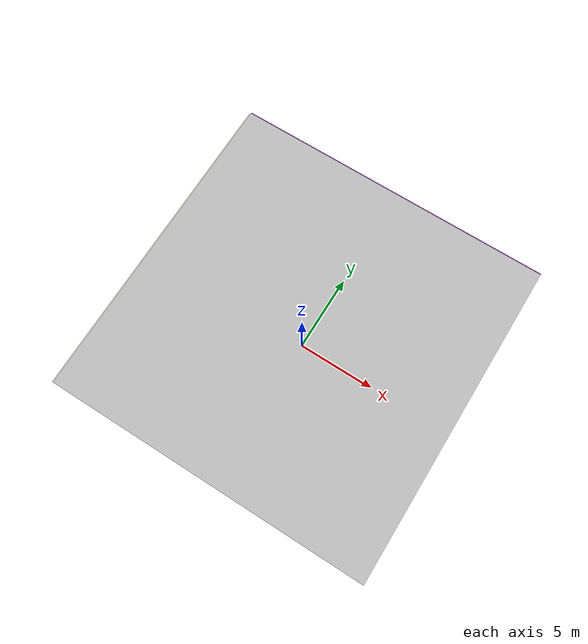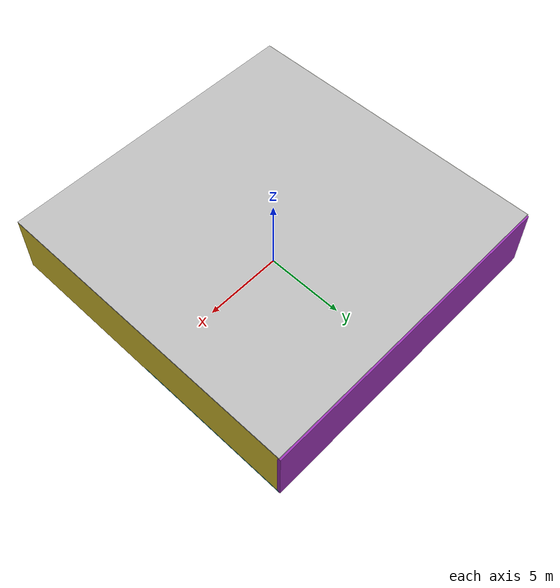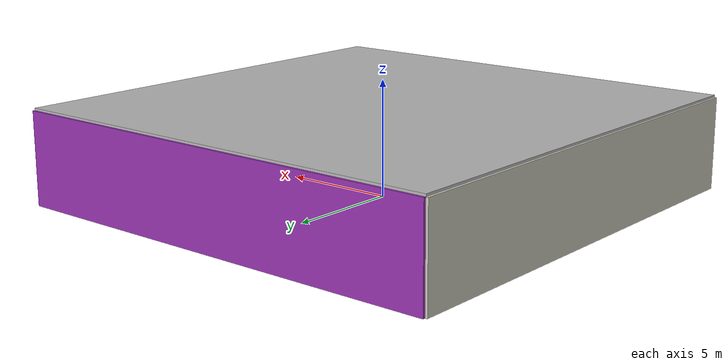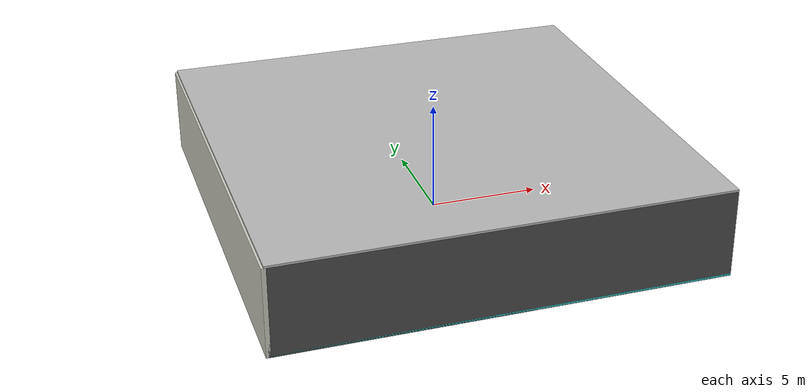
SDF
<sdf version="1.4">
 <world name="default">
  <physics type="ode">
   <max_step_size>0.001</max_step_size>
   <real_time_factor>1</real_time_factor>
   <real_time_update_rate>1000</real_time_update_rate>
   <gravity>0 0 -9.8</gravity>
  </physics>
  <scene><ambient>0.4 0.4 0.4 1</ambient><background>0.7 0.7 0.7 1</background><shadows>1</shadows></scene>
  <model name="Surrounding">
   <static>1</static>
   <link name="Ceiling">
    <collision name="Ceiling_Collision"><geometry><box><size>20 20 0.1</size></box></geometry></collision>
    <visual name="Ceiling_Visual">
     <geometry><box><size>20 20 0.1</size></box></geometry>
     <material>
      <script><uri>file://media/materials/scripts/gazebo.material</uri><name>Gazebo/LightOff</name></script>
     </material>
    </visual>
    <pose>0 0 4.05 0 0 0</pose>
   </link>
   <link name="Wall_South">
    <collision name="Wall_South_Collision">
     <geometry><box><size>20 0 4</size></box></geometry>
     <pose>0 0 2 0 -0 0</pose>
    </collision>
    <visual name="Wall_South_Visual">
     <pose>0 0 2 0 -0 0</pose>
     <geometry><box><size>20 0 4</size></box></geometry>
     <material>
      <script><uri>file://media/materials/scripts/gazebo.material</uri><name>Gazebo/Road</name></script>
     </material>
    </visual>
    <velocity_decay><linear>0</linear><angular>0</angular></velocity_decay>
    <pose>0 -10 0 0 -0 0</pose>
   </link>
   <link name="Wall_East">
    <collision name="Wall_21_Collision">
     <geometry><box><size>20 0 4</size></box></geometry>
     <pose>0 0 2 0 -0 0</pose>
    </collision>
    <visual name="Wall_21_Visual">
     <pose>0 0 2 0 -0 0</pose>
     <geometry><box><size>20 0 4</size></box></geometry>
     <material>
      <script><uri>file://media/materials/scripts/gazebo.material</uri><name>Gazebo/ZincYellow</name></script>
     </material>
    </visual>
    <velocity_decay><linear>0</linear><angular>0</angular></velocity_decay>
    <pose>10 0 0 0 -0 1.5708</pose>
   </link>
   <link name="Wall_North">
    <collision name="Wall_22_Collision">
     <geometry><box><size>20 0.2 4</size></box></geometry>
     <pose>0 0 2 0 -0 0</pose>
    </collision>
    <visual name="Wall_22_Visual">
     <pose>0 0 2 0 -0 0</pose>
     <geometry><box><size>20 0.2 4</size></box></geometry>
     <material>
      <script><uri>file://media/materials/scripts/gazebo.material</uri><name>Gazebo/Purple</name></script>
     </material>
    </visual>
    <velocity_decay><linear>0</linear><angular>0</angular></velocity_decay>
    <pose>0 10 0 0 -0 0</pose>
   </link>
   <link name="Wall_West">
    <collision name="Wall_23_Collision">
     <geometry><box><size>20 0.2 4</size></box></geometry>
     <pose>0 0 2 0 -0 0</pose>
    </collision>
    <visual name="Wall_23_Visual">
     <pose>0 0 2 0 -0 0</pose>
     <geometry><box><size>20 0.2 4</size></box></geometry>
     <material>
      <script><uri>file://media/materials/scripts/gazebo.material</uri><name>Gazebo/PaintedWall</name></script>
     </material>
    </visual>
    <velocity_decay><linear>0</linear><angular>0</angular></velocity_decay>
    <pose>-10 0 0 0 0 -1.5708</pose>
   </link>
   <link name="Ground_link">
    <collision name="collision">
     <pose>0 0 .05 0 -0 0</pose>
     <geometry><box><size>20 20 0.1</size></box></geometry>
    </collision>
    <visual name="visual">
     <pose>0 0 .05 0 -0 0</pose>
     <geometry><box><size>20 20 0.1</size></box></geometry>
     <material>
      <script><uri>file://media/materials/scripts/gazebo.material</uri><name>Gazebo/Turquoise</name></script>
     </material>
    </visual>
   </link>
   <static>1</static>
  </model>
  <spherical_coordinates>
   <surface_model>EARTH_WGS84</surface_model>
   <latitude_deg>0</latitude_deg>
   <longitude_deg>0</longitude_deg>
   <elevation>0</elevation>
   <heading_deg>0</heading_deg>
  </spherical_coordinates>
  <light name="lightball_0" type="diffuse">
   <diffuse>0.8 0.8 0.8 1</diffuse>
   <specular>0.2 0.2 0.2 1</specular>
   <attenuation>
    <range>100</range>
    <constant>0.7</constant>
    <linear>0.01</linear>
    <quadratic>0.001</quadratic>
   </attenuation>
   <direction>-0.5 0.1 -0.9</direction>
   <pose>-4.10582915126 6.70011215497 1.17747114304 0 0 0</pose>
  </light>
  <light name="lightball_1" type="diffuse">
   <diffuse>0.8 0.8 0.8 1</diffuse>
   <specular>0.2 0.2 0.2 1</specular>
   <attenuation>
    <range>100</range>
    <constant>0.7</constant>
    <linear>0.01</linear>
    <quadratic>0.001</quadratic>
   </attenuation>
   <direction>-0.5 0.1 -0.9</direction>
   <pose>-6.44131933211 5.34100781052 3.3616765255 0 0 0</pose>
  </light>
  <light name="lightball_2" type="diffuse">
   <diffuse>0.8 0.8 0.8 1</diffuse>
   <specular>0.2 0.2 0.2 1</specular>
   <attenuation>
    <range>100</range>
    <constant>0.7</constant>
    <linear>0.01</linear>
    <quadratic>0.001</quadratic>
   </attenuation>
   <direction>-0.5 0.1 -0.9</direction>
   <pose>1.96430563532 8.00108510533 3.539078117 0 0 0</pose>
  </light>
  <light name="lightball_3" type="diffuse">
   <diffuse>0.8 0.8 0.8 1</diffuse>
   <specular>0.2 0.2 0.2 1</specular>
   <attenuation>
    <range>100</range>
    <constant>0.7</constant>
    <linear>0.01</linear>
    <quadratic>0.001</quadratic>
   </attenuation>
   <direction>-0.5 0.1 -0.9</direction>
   <pose>7.26277574204 0.0601377573276 3.48396752243 0 0 0</pose>
  </light>
  <light name="lightball_4" type="diffuse">
   <diffuse>0.8 0.8 0.8 1</diffuse>
   <specular>0.2 0.2 0.2 1</specular>
   <attenuation>
    <range>100</range>
    <constant>0.7</constant>
    <linear>0.01</linear>
    <quadratic>0.001</quadratic>
   </attenuation>
   <direction>-0.5 0.1 -0.9</direction>
   <pose>7.15063596049 8.25140648393 1.73144904301 0 0 0</pose>
  </light>
  <light name="lightball_5" type="diffuse">
   <diffuse>0.8 0.8 0.8 1</diffuse>
   <specular>0.2 0.2 0.2 1</specular>
   <attenuation>
    <range>100</range>
    <constant>0.7</constant>
    <linear>0.01</linear>
    <quadratic>0.001</quadratic>
   </attenuation>
   <direction>-0.5 0.1 -0.9</direction>
   <pose>-7.89094120251 -1.35915214847 0.987357651347 0 0 0</pose>
  </light>
  <light name="lightball_6" type="diffuse">
   <diffuse>0.8 0.8 0.8 1</diffuse>
   <specular>0.2 0.2 0.2 1</specular>
   <attenuation>
    <range>100</range>
    <constant>0.7</constant>
    <linear>0.01</linear>
    <quadratic>0.001</quadratic>
   </attenuation>
   <direction>-0.5 0.1 -0.9</direction>
   <pose>-7.73089288639 -1.52283562236 1.25266337037 0 0 0</pose>
  </light>
  <light name="lightball_7" type="diffuse">
   <diffuse>0.8 0.8 0.8 1</diffuse>
   <specular>0.2 0.2 0.2 1</specular>
   <attenuation>
    <range>100</range>
    <constant>0.7</constant>
    <linear>0.01</linear>
    <quadratic>0.001</quadratic>
   </attenuation>
   <direction>-0.5 0.1 -0.9</direction>
   <pose>5.28761678616 -4.53245109199 3.30254680249 0 0 0</pose>
  </light>
  <light name="lightball_8" type="diffuse">
   <diffuse>0.8 0.8 0.8 1</diffuse>
   <specular>0.2 0.2 0.2 1</specular>
   <attenuation>
    <range>100</range>
    <constant>0.7</constant>
    <linear>0.01</linear>
    <quadratic>0.001</quadratic>
   </attenuation>
   <direction>-0.5 0.1 -0.9</direction>
   <pose>-0.507007755808 -1.46110586432 3.47165222451 0 0 0</pose>
  </light>
  <light name="lightball_9" type="diffuse">
   <diffuse>0.8 0.8 0.8 1</diffuse>
   <specular>0.2 0.2 0.2 1</specular>
   <attenuation>
    <range>100</range>
    <constant>0.7</constant>
    <linear>0.01</linear>
    <quadratic>0.001</quadratic>
   </attenuation>
   <direction>-0.5 0.1 -0.9</direction>
   <pose>3.84097351581 -3.3232605613 1.87581715911 0 0 0</pose>
  </light>
  <light name="lightball_10" type="diffuse">
   <diffuse>0.8 0.8 0.8 1</diffuse>
   <specular>0.2 0.2 0.2 1</specular>
   <attenuation>
    <range>100</range>
    <constant>0.7</constant>
    <linear>0.01</linear>
    <quadratic>0.001</quadratic>
   </attenuation>
   <direction>-0.5 0.1 -0.9</direction>
   <pose>-2.03640652308 -1.57928871298 1.03750312689 0 0 0</pose>
  </light>
  <include><uri>model://table</uri><pose>-6.45564508466 -1.49936472385 0 0 0 1.37755207564</pose></include>
  <include><uri>model://table</uri><pose>-3.46762807645 5.26902429317 0 0 0 2.62364733893</pose></include>
  <include>
   <uri>model://construction_cone</uri>
   <pose>1.41768733661 3.44598161445 0 0 0 2.39251321081</pose>
  </include>
  <include><uri>model://cabinet</uri><pose>1.20655069941 6.88919523389 0 0 0 2.54411397795</pose></include>
 </world>
</sdf>

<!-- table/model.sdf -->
<sdf version="1.5">
  <model name="table">
    <static>true</static>
    <link name="link">
      <collision name="surface">
        <pose>0 0 1.0 0 0 0</pose>
        <geometry>
          <box>
            <size>1.5 0.8 0.03</size>
          </box>
        </geometry>
        <surface>
          <friction>
            <ode>
              <mu>0.6</mu>
              <mu2>0.6</mu2>
            </ode>
          </friction>
        </surface>
      </collision>
      <visual name="visual1">
        <pose>0 0 1.0 0 0 0</pose>
        <geometry>
          <box>
            <size>1.5 0.8 0.03</size>
          </box>
        </geometry>
        <material>
          <script>
            <uri>model://media/materials/scripts/gazebo.material</uri>
            <name>Gazebo/Wood</name>
          </script>
        </material>
      </visual>
      <collision name="front_left_leg">
        <pose>0.68 0.38 0.5 0 0 0</pose>
        <geometry>
          <cylinder>
            <radius>0.02</radius>
            <length>1.0</length>
          </cylinder>
        </geometry>
      </collision>
      <visual name="front_left_leg">
        <pose>0.68 0.38 0.5 0 0 0</pose>
        <geometry>
          <cylinder>
            <radius>0.02</radius>
            <length>1.0</length>
          </cylinder>
        </geometry>
        <material>
          <script>
            <uri>model://media/materials/scripts/gazebo.material</uri>
            <name>Gazebo/Grey</name>
          </script>
        </material>
      </visual>
      <collision name="front_right_leg">
        <pose>0.68 -0.38 0.5 0 0 0</pose>
        <geometry>
          <cylinder>
            <radius>0.02</radius>
            <length>1.0</length>
          </cylinder>
        </geometry>
      </collision>
      <visual name="front_right_leg">
        <pose>0.68 -0.38 0.5 0 0 0</pose>
        <geometry>
          <cylinder>
            <radius>0.02</radius>
            <length>1.0</length>
          </cylinder>
        </geometry>
        <material>
          <script>
            <uri>model://media/materials/scripts/gazebo.material</uri>
            <name>Gazebo/Grey</name>
          </script>
        </material>
      </visual>
      <collision name="back_right_leg">
        <pose>-0.68 -0.38 0.5 0 0 0</pose>
        <geometry>
          <cylinder>
            <radius>0.02</radius>
            <length>1.0</length>
          </cylinder>
        </geometry>
      </collision>
      <visual name="back_right_leg">
        <pose>-0.68 -0.38 0.5 0 0 0</pose>
        <geometry>
          <cylinder>
            <radius>0.02</radius>
            <length>1.0</length>
          </cylinder>
        </geometry>
        <material>
          <script>
            <uri>model://media/materials/scripts/gazebo.material</uri>
            <name>Gazebo/Grey</name>
          </script>
        </material>
      </visual>
      <collision name="back_left_leg">
        <pose>-0.68 0.38 0.5 0 0 0</pose>
        <geometry>
          <cylinder>
            <radius>0.02</radius>
            <length>1.0</length>
          </cylinder>
        </geometry>
      </collision>
      <visual name="back_left_leg">
        <pose>-0.68 0.38 0.5 0 0 0</pose>
        <geometry>
          <cylinder>
            <radius>0.02</radius>
            <length>1.0</length>
          </cylinder>
        </geometry>
        <material>
          <script>
            <uri>model://media/materials/scripts/gazebo.material</uri>
            <name>Gazebo/Grey</name>
          </script>
        </material>
      </visual>
    </link>
  </model>
</sdf>

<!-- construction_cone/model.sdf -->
<sdf version="1.5">
  <model name="Construction Cone">
    <link name="link">
      <collision name="collision">
        <geometry>
          <mesh>
            <scale>10 10 10</scale>
            <uri>file://isr-testbed/construction_cone/meshes/construction_cone.dae</uri>
          </mesh>
        </geometry>
      </collision>
      <visual name="visual">
        <geometry>
          <mesh>
            <scale>10 10 10</scale>
            <uri>file://isr-testbed/construction_cone/meshes/construction_cone.dae</uri>
          </mesh>
        </geometry>
      </visual>
    </link>
  </model>
</sdf>

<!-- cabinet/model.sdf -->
<sdf version="1.5">
  <model name="cabinet">
    <static>true</static>
    <link name="cabinet_bottom_plate">
      <inertial>
        <pose>0 0 -1 0 0 0</pose>
        <inertia>
          <ixx>2.050000</ixx>
          <ixy>0</ixy>
          <ixz>0</ixz>
          <iyy>2.050000</iyy>
          <iyz>0</iyz>
          <izz>2.050000</izz>
        </inertia>
        <mass>25.000000</mass>
      </inertial>
      <collision name="cabinet_bottom_plate_geom">
        <pose>0 0 0.010000 0 0 0</pose>
        <geometry>
          <box>
            <size>0.450000 0.450000 0.020000</size>
          </box>
        </geometry>
      </collision>
      <visual name="cabinet_bottom_plate_geom_visual">
        <pose>0 0 0.010000 0 0 0</pose>
        <geometry>
          <box>
            <size>0.450000 0.450000 0.020000</size>
          </box>
        </geometry>
        <material>
          <script>
            <uri>model://media/materials/scripts/gazebo.material</uri>
            <name>Gazebo/Wood</name>
          </script>
        </material>
      </visual>
      <collision name="cabinet_bottom_plate_geom_cabinet_back_plate">
        <pose>0.235000 0 0.510000 0 0 0</pose>
        <geometry>
          <box>
            <size>0.020000 0.450000 1.020000</size>
          </box>
        </geometry>
      </collision>
      <visual name="cabinet_bottom_plate_geom_cabinet_back_plate_visual">
        <pose>0.235000 0 0.510000 0 0 0</pose>
        <geometry>
          <box>
            <size>0.020000 0.450000 1.020000</size>
          </box>
        </geometry>
        <material>
          <script>
            <uri>model://media/materials/scripts/gazebo.material</uri>
            <name>Gazebo/Wood</name>
          </script>
        </material>
      </visual>
      <collision name="cabinet_bottom_plate_geom_cabinet_left_plate">
        <pose>0 0.235000 0.510000 0 0 0</pose>
        <geometry>
          <box>
            <size>0.450000 0.020000 1.020000</size>
          </box>
        </geometry>
      </collision>
      <visual name="cabinet_bottom_plate_geom_cabinet_left_plate_visual">
        <pose>0 0.235000 0.510000 0 0 0</pose>
        <geometry>
          <box>
            <size>0.450000 0.020000 1.020000</size>
          </box>
        </geometry>
        <material>
          <script>
            <uri>model://media/materials/scripts/gazebo.material</uri>
            <name>Gazebo/Wood</name>
          </script>
        </material>
      </visual>
      <collision name="cabinet_bottom_plate_geom_cabinet_middle_plate">
        <pose>0 0 0.510000 0 0 0</pose>
        <geometry>
          <box>
            <size>0.450000 0.450000 0.020000</size>
          </box>
        </geometry>
      </collision>
      <visual name="cabinet_bottom_plate_geom_cabinet_middle_plate_visual">
        <pose>0 0 0.510000 0 0 0</pose>
        <geometry>
          <box>
            <size>0.450000 0.450000 0.020000</size>
          </box>
        </geometry>
        <material>
          <script>
            <uri>model://media/materials/scripts/gazebo.material</uri>
            <name>Gazebo/Wood</name>
          </script>
        </material>
      </visual>
      <collision name="cabinet_bottom_plate_geom_cabinet_right_plate">
        <pose>0 -0.235000 0.510000 0 0 0</pose>
        <geometry>
          <box>
            <size>0.450000 0.020000 1.020000</size>
          </box>
        </geometry>
      </collision>
      <visual name="cabinet_bottom_plate_geom_cabinet_right_plate_visual">
        <pose>0 -0.235000 0.510000 0 0 0</pose>
        <geometry>
          <box>
            <size>0.450000 0.020000 1.020000</size>
          </box>
        </geometry>
        <material>
          <script>
            <uri>model://media/materials/scripts/gazebo.material</uri>
            <name>Gazebo/Wood</name>
          </script>
        </material>
      </visual>
      <collision name="cabinet_bottom_plate_geom_cabinet_top_plate">
        <pose>0 0 1.010000 0 0 0</pose>
        <geometry>
          <box>
            <size>0.450000 0.450000 0.020000</size>
          </box>
        </geometry>
      </collision>
      <visual name="cabinet_bottom_plate_geom_cabinet_top_plate_visual">
        <pose>0 0 1.010000 0 0 0</pose>
        <geometry>
          <box>
            <size>0.450000 0.450000 0.020000</size>
          </box>
        </geometry>
        <material>
          <script>
            <uri>model://media/materials/scripts/gazebo.material</uri>
            <name>Gazebo/Wood</name>
          </script>
        </material>
      </visual>
    </link>
  </model>
</sdf>
